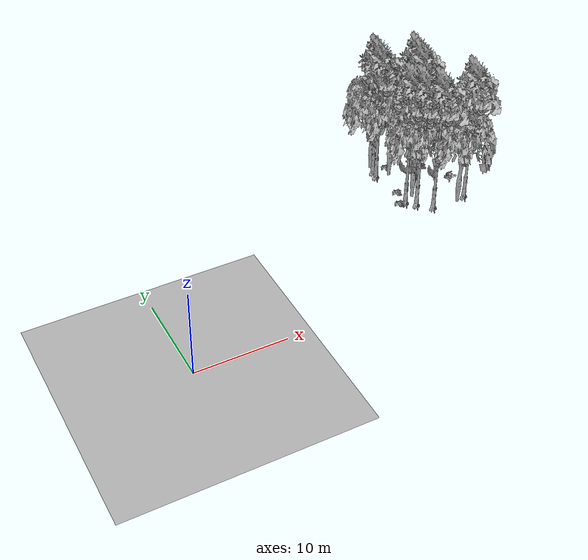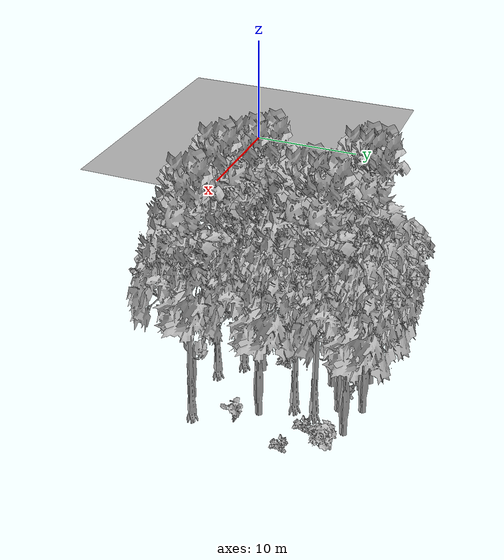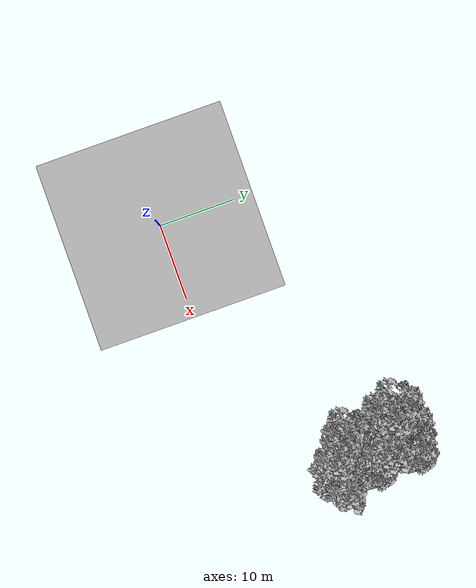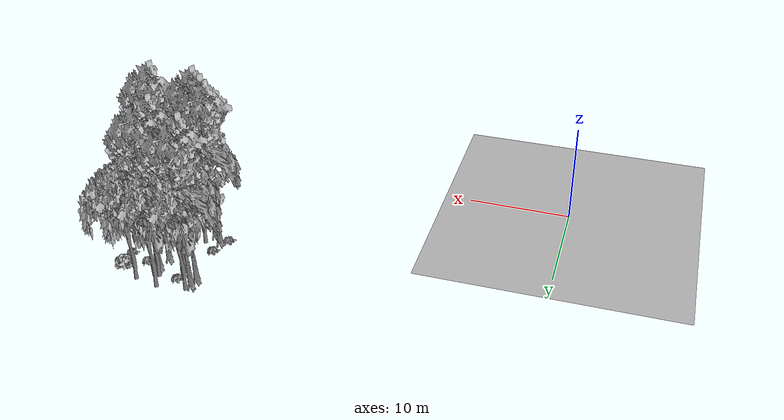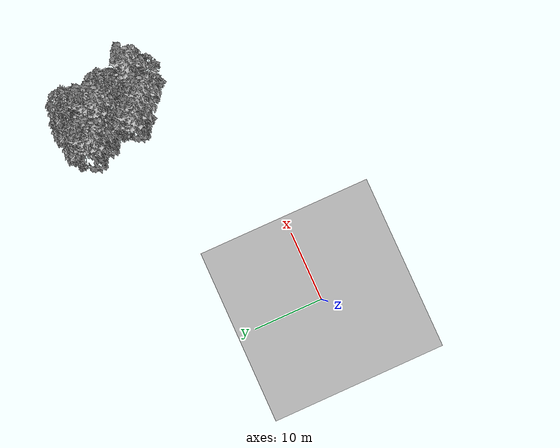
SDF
<sdf version="1.7">
 <world name="default">
  <model name="ground_plane">
   <static>1</static>
   <link name="link">
    <collision name="collision">
     <pose>-50 0 0 0 -0 0</pose>
     <geometry><plane><normal>0 0 1</normal><size>80 80</size></plane></geometry>
     <surface><contact><ode><min_depth>0.01</min_depth><max_vel>0</max_vel></ode></contact></surface>
    </collision>
    <visual name="grass">
     <cast_shadows>0</cast_shadows>
     <geometry>
      <mesh>
       <scale>0.46714285714285714 0.46714285714285714 0.1</scale>
       <uri>file://grass_plane/meshes/grass_plane.dae</uri>
      </mesh>
     </geometry>
    </visual>
   </link>
  </model>
  <model name="Tree 29">
   <static>1</static>
   <pose>35.23916422666538 17.91605360973555 0 1.57079 -0 0</pose>
   <link name="link">
    <collision name="collision">
     <geometry><mesh><scale>3.5 5 3.5</scale><uri>model://tree_9/meshes/tree_9.obj</uri></mesh></geometry>
    </collision>
    <visual name="visual">
     <geometry><mesh><scale>3.5 5 3.5</scale><uri>model://tree_9/meshes/tree_9.obj</uri></mesh></geometry>
    </visual>
   </link>
  </model>
  <model name="Tree 99">
   <static>1</static>
   <pose>32.39886672819007 12.161589017643948 0 1.57079 -0 0</pose>
   <link name="link">
    <collision name="collision">
     <geometry><mesh><scale>3.5 5 3.5</scale><uri>model://tree_9/meshes/tree_9.obj</uri></mesh></geometry>
    </collision>
    <visual name="visual">
     <geometry><mesh><scale>3.5 5 3.5</scale><uri>model://tree_9/meshes/tree_9.obj</uri></mesh></geometry>
    </visual>
   </link>
  </model>
  <model name="Tree 114">
   <static>1</static>
   <pose>36.5251670963779 14.854850866996841 0 1.57079 -0 0</pose>
   <link name="link">
    <collision name="collision">
     <geometry><mesh><scale>3.5 5 3.5</scale><uri>model://tree_2/meshes/tree_2.obj</uri></mesh></geometry>
    </collision>
    <visual name="visual">
     <geometry><mesh><scale>3.5 5 3.5</scale><uri>model://tree_2/meshes/tree_2.obj</uri></mesh></geometry>
    </visual>
   </link>
  </model>
  <model name="Tree 236">
   <static>1</static>
   <pose>31.255769459263774 20.268086496402738 0 1.57079 -0 0</pose>
   <link name="link">
    <collision name="collision">
     <geometry><mesh><scale>3.5 5 3.5</scale><uri>model://tree_2/meshes/tree_2.obj</uri></mesh></geometry>
    </collision>
    <visual name="visual">
     <geometry><mesh><scale>3.5 5 3.5</scale><uri>model://tree_2/meshes/tree_2.obj</uri></mesh></geometry>
    </visual>
   </link>
  </model>
  <model name="Tree 248">
   <static>1</static>
   <pose>31.227568156565837 19.518820721282857 0 1.57079 -0 0</pose>
   <link name="link">
    <collision name="collision">
     <geometry><mesh><scale>3.5 5 3.5</scale><uri>model://tree_9/meshes/tree_9.obj</uri></mesh></geometry>
    </collision>
    <visual name="visual">
     <geometry><mesh><scale>3.5 5 3.5</scale><uri>model://tree_9/meshes/tree_9.obj</uri></mesh></geometry>
    </visual>
   </link>
  </model>
  <model name="Tree 301">
   <static>1</static>
   <pose>33.98069177001841 20.57809628863418 0 1.57079 -0 0</pose>
   <link name="link">
    <collision name="collision">
     <geometry><mesh><scale>3.5 5 3.5</scale><uri>model://tree_2/meshes/tree_2.obj</uri></mesh></geometry>
    </collision>
    <visual name="visual">
     <geometry><mesh><scale>3.5 5 3.5</scale><uri>model://tree_2/meshes/tree_2.obj</uri></mesh></geometry>
    </visual>
   </link>
  </model>
  <model name="Tree 302">
   <static>1</static>
   <pose>36.26672217486359 20.086100082646794 0 1.57079 -0 0</pose>
   <link name="link">
    <collision name="collision">
     <geometry><mesh><scale>3.5 5 3.5</scale><uri>model://tree_2/meshes/tree_2.obj</uri></mesh></geometry>
    </collision>
    <visual name="visual">
     <geometry><mesh><scale>3.5 5 3.5</scale><uri>model://tree_2/meshes/tree_2.obj</uri></mesh></geometry>
    </visual>
   </link>
  </model>
  <model name="Tree 418">
   <static>1</static>
   <pose>32.61681729943845 13.554859405071781 0 1.57079 -0 0</pose>
   <link name="link">
    <collision name="collision">
     <geometry><mesh><scale>3.5 5 3.5</scale><uri>model://tree_2/meshes/tree_2.obj</uri></mesh></geometry>
    </collision>
    <visual name="visual">
     <geometry><mesh><scale>3.5 5 3.5</scale><uri>model://tree_2/meshes/tree_2.obj</uri></mesh></geometry>
    </visual>
   </link>
  </model>
  <model name="Tree 437">
   <static>1</static>
   <pose>31.5139554985076 13.032832147728932 0 1.57079 -0 0</pose>
   <link name="link">
    <collision name="collision">
     <geometry><mesh><scale>3.5 5 3.5</scale><uri>model://tree_9/meshes/tree_9.obj</uri></mesh></geometry>
    </collision>
    <visual name="visual">
     <geometry><mesh><scale>3.5 5 3.5</scale><uri>model://tree_9/meshes/tree_9.obj</uri></mesh></geometry>
    </visual>
   </link>
  </model>
  <model name="Tree 504">
   <static>1</static>
   <pose>34.983532467093525 16.573351812334337 0 1.57079 -0 0</pose>
   <link name="link">
    <collision name="collision">
     <geometry><mesh><scale>3.5 5 3.5</scale><uri>model://tree_9/meshes/tree_9.obj</uri></mesh></geometry>
    </collision>
    <visual name="visual">
     <geometry><mesh><scale>3.5 5 3.5</scale><uri>model://tree_9/meshes/tree_9.obj</uri></mesh></geometry>
    </visual>
   </link>
  </model>
  <model name="Tree 511">
   <static>1</static>
   <pose>34.44661539672343 19.1979470644697 0 1.57079 -0 0</pose>
   <link name="link">
    <collision name="collision">
     <geometry><mesh><scale>3.5 5 3.5</scale><uri>model://tree_2/meshes/tree_2.obj</uri></mesh></geometry>
    </collision>
    <visual name="visual">
     <geometry><mesh><scale>3.5 5 3.5</scale><uri>model://tree_2/meshes/tree_2.obj</uri></mesh></geometry>
    </visual>
   </link>
  </model>
  <model name="Tree 521">
   <static>1</static>
   <pose>31.103866599645613 18.652610703780958 0 1.57079 -0 0</pose>
   <link name="link">
    <collision name="collision">
     <geometry><mesh><scale>3.5 5 3.5</scale><uri>model://tree_9/meshes/tree_9.obj</uri></mesh></geometry>
    </collision>
    <visual name="visual">
     <geometry><mesh><scale>3.5 5 3.5</scale><uri>model://tree_9/meshes/tree_9.obj</uri></mesh></geometry>
    </visual>
   </link>
  </model>
  <model name="Tree 553">
   <static>1</static>
   <pose>36.56376137698891 10.489001212429798 0 1.57079 -0 0</pose>
   <link name="link">
    <collision name="collision">
     <geometry><mesh><scale>3.5 5 3.5</scale><uri>model://tree_2/meshes/tree_2.obj</uri></mesh></geometry>
    </collision>
    <visual name="visual">
     <geometry><mesh><scale>3.5 5 3.5</scale><uri>model://tree_2/meshes/tree_2.obj</uri></mesh></geometry>
    </visual>
   </link>
  </model>
  <model name="Tree 559">
   <static>1</static>
   <pose>33.787621959160106 10.91813689371272 0 1.57079 -0 0</pose>
   <link name="link">
    <collision name="collision">
     <geometry><mesh><scale>3.5 5 3.5</scale><uri>model://tree_9/meshes/tree_9.obj</uri></mesh></geometry>
    </collision>
    <visual name="visual">
     <geometry><mesh><scale>3.5 5 3.5</scale><uri>model://tree_9/meshes/tree_9.obj</uri></mesh></geometry>
    </visual>
   </link>
  </model>
  <model name="Tree 605">
   <static>1</static>
   <pose>32.40137528655711 18.119370398667442 0 1.57079 -0 0</pose>
   <link name="link">
    <collision name="collision">
     <geometry><mesh><scale>3.5 5 3.5</scale><uri>model://tree_2/meshes/tree_2.obj</uri></mesh></geometry>
    </collision>
    <visual name="visual">
     <geometry><mesh><scale>3.5 5 3.5</scale><uri>model://tree_2/meshes/tree_2.obj</uri></mesh></geometry>
    </visual>
   </link>
  </model>
  <model name="Tree 637">
   <static>1</static>
   <pose>37.93278686647048 11.064837619741176 0 1.57079 -0 0</pose>
   <link name="link">
    <collision name="collision">
     <geometry><mesh><scale>3.5 5 3.5</scale><uri>model://tree_9/meshes/tree_9.obj</uri></mesh></geometry>
    </collision>
    <visual name="visual">
     <geometry><mesh><scale>3.5 5 3.5</scale><uri>model://tree_9/meshes/tree_9.obj</uri></mesh></geometry>
    </visual>
   </link>
  </model>
  <model name="Bush 11">
   <static>1</static>
   <pose>36.544079548052366 17.628251554110214 0 1.57079 -0 0</pose>
   <link name="link">
    <collision name="collision">
     <geometry><mesh><scale>2 2 2</scale><uri>model://bush_2/meshes/bush_2.obj</uri></mesh></geometry>
     <surface><contact><collide_without_contact>false</collide_without_contact></contact></surface>
    </collision>
    <visual name="visual">
     <geometry><mesh><scale>2 2 2</scale><uri>model://bush_2/meshes/bush_2.obj</uri></mesh></geometry>
    </visual>
   </link>
  </model>
  <model name="Bush 89">
   <static>1</static>
   <pose>31.41803380460513 14.62661929807814 0 1.57079 -0 0</pose>
   <link name="link">
    <collision name="collision">
     <geometry><mesh><scale>2 2 2</scale><uri>model://bush_2/meshes/bush_2.obj</uri></mesh></geometry>
     <surface><contact><collide_without_contact>false</collide_without_contact></contact></surface>
    </collision>
    <visual name="visual">
     <geometry><mesh><scale>2 2 2</scale><uri>model://bush_2/meshes/bush_2.obj</uri></mesh></geometry>
    </visual>
   </link>
  </model>
  <model name="Bush 179">
   <static>1</static>
   <pose>37.82264031912851 13.775207279998853 0 1.57079 -0 0</pose>
   <link name="link">
    <collision name="collision">
     <geometry><mesh><scale>2 2 2</scale><uri>model://bush_0/meshes/bush_0.obj</uri></mesh></geometry>
     <surface><contact><collide_without_contact>false</collide_without_contact></contact></surface>
    </collision>
    <visual name="visual">
     <geometry><mesh><scale>2 2 2</scale><uri>model://bush_0/meshes/bush_0.obj</uri></mesh></geometry>
    </visual>
   </link>
  </model>
  <model name="Bush 363">
   <static>1</static>
   <pose>30.601823185330275 12.80973336752777 0 1.57079 -0 0</pose>
   <link name="link">
    <collision name="collision">
     <geometry><mesh><scale>2 2 2</scale><uri>model://bush_2/meshes/bush_2.obj</uri></mesh></geometry>
     <surface><contact><collide_without_contact>false</collide_without_contact></contact></surface>
    </collision>
    <visual name="visual">
     <geometry><mesh><scale>2 2 2</scale><uri>model://bush_2/meshes/bush_2.obj</uri></mesh></geometry>
    </visual>
   </link>
  </model>
  <model name="Bush 375">
   <static>1</static>
   <pose>32.735909499152825 19.189156820801358 0 1.57079 -0 0</pose>
   <link name="link">
    <collision name="collision">
     <geometry><mesh><scale>2 2 2</scale><uri>model://bush_2/meshes/bush_2.obj</uri></mesh></geometry>
     <surface><contact><collide_without_contact>false</collide_without_contact></contact></surface>
    </collision>
    <visual name="visual">
     <geometry><mesh><scale>2 2 2</scale><uri>model://bush_2/meshes/bush_2.obj</uri></mesh></geometry>
    </visual>
   </link>
  </model>
  <model name="Bush 415">
   <static>1</static>
   <pose>38.560254459532686 16.924247944257793 0 1.57079 -0 0</pose>
   <link name="link">
    <collision name="collision">
     <geometry><mesh><scale>2 2 2</scale><uri>model://bush_2/meshes/bush_2.obj</uri></mesh></geometry>
     <surface><contact><collide_without_contact>false</collide_without_contact></contact></surface>
    </collision>
    <visual name="visual">
     <geometry><mesh><scale>2 2 2</scale><uri>model://bush_2/meshes/bush_2.obj</uri></mesh></geometry>
    </visual>
   </link>
  </model>
  <model name="Bush 419">
   <static>1</static>
   <pose>37.86978163724858 19.165313731946235 0 1.57079 -0 0</pose>
   <link name="link">
    <collision name="collision">
     <geometry><mesh><scale>2 2 2</scale><uri>model://bush_1/meshes/bush_1.obj</uri></mesh></geometry>
     <surface><contact><collide_without_contact>false</collide_without_contact></contact></surface>
    </collision>
    <visual name="visual">
     <geometry><mesh><scale>2 2 2</scale><uri>model://bush_1/meshes/bush_1.obj</uri></mesh></geometry>
    </visual>
   </link>
  </model>
 </world>
</sdf>
